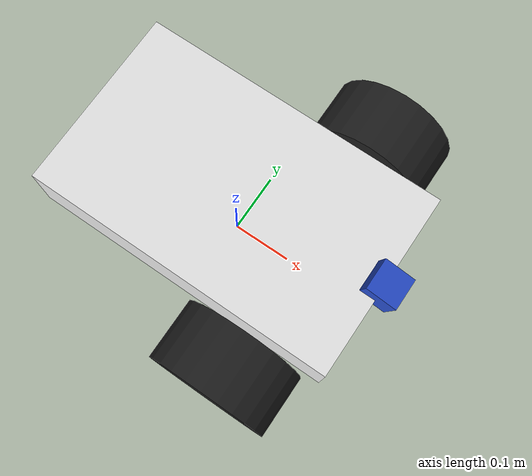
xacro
<?xml version="1.0"?>

<robot name="simpleton" xmlns:xacro="http://www.ros.org/wiki/xacro">

	<xacro:include filename="$(find simpleton_description)/urdf/simpleton.gazebo" />
	<xacro:include filename="$(find simpleton_description)/urdf/macros.xacro" />

	<xacro:property name="wheelThickness" value="0.1"/>
	<xacro:property name="wheelRadius" value="0.1"/>

	<xacro:property name="chassisWidth" value="0.3"/>
	<xacro:property name="chassisHeight" value="0.1"/>
	<xacro:property name="chassisLength" value="0.5"/>
	<xacro:property name="casterRadius" value="0.05"/>
	<xacro:property name="cameraSize" value="0.05"/>

	<!-- Base link -->
	<link name="footprint" />

	<!-- Chassis -->
  <joint name="base_joint" type="fixed">
    <parent link="footprint"/>
    <child link="chassis"/>
  </joint>

  <link name="chassis">
    <collision>
      <origin xyz="0 0 ${wheelRadius+(chassisHeight/2)}" rpy="0 0 0"/>
      <geometry>
			<box size="${chassisLength} ${chassisWidth} ${chassisHeight}"/>
      </geometry>
    </collision>

    <visual>
      <origin xyz="0 0 ${wheelRadius+(chassisHeight/2)}" rpy="0 0 0"/>
      <geometry>
			<box size="${chassisLength} ${chassisWidth} ${chassisHeight}"/>
      </geometry>
      <material name="white"/>
    </visual>

		<inertial>
		  <mass value="1"/>
			<origin xyz="0 0 0" rpy="0 0 0"/>
		  <box_inertia m="0.5" x="${chassisLength}" y="${chassisWidth}" z="${chassisHeight}"/>
		</inertial>
  </link>

	<wheel lr="left" y="-1"/>
	<wheel lr="right" y="1"/>

	<!-- Caster Wheel -->
  <joint name="fixed" type="fixed">
    <parent link="chassis"/>
    <child link="caster_wheel"/>
  </joint>

  <link name="caster_wheel">

    <collision>
      <origin xyz="${casterRadius-chassisLength/2} 0 ${casterRadius-chassisHeight+wheelRadius}" rpy="0 0 0"/>
      <geometry>
	<sphere radius="${casterRadius}"/>
      </geometry>
    </collision>

    <visual>
      <origin xyz="${casterRadius-chassisLength/2} 0 ${casterRadius-chassisHeight+wheelRadius}" rpy="0 0 0"/>
      <geometry>
	<sphere radius="${casterRadius}"/>
      </geometry>
      <material name="red"/>
    </visual>

    <inertial>
      <origin xyz="${casterRadius-chassisLength/2} 0 ${casterRadius-chassisHeight+wheelRadius}" rpy="0 0 0"/>
      <mass value="0.5"/>
      <sphere_inertia m="0.5" r="${casterRadius}"/>
    </inertial>
  </link>

	<!-- Camera -->
	<!-- You can adjust the camera angle with the p in rpy, measured in radians. -->
	<!-- You can also increate the height of the camera by adding a number, in meters, -->
	<!-- to the z in xyz. For example, to simulate a camera mounted on a 1/2 meter post, -->
	<!-- we can replace the z value with ${wheelRadius+chassisHeight+0.5}   							-->
  <joint name="camera_joint" type="fixed">
    <origin xyz="${chassisLength/2} 0 ${wheelRadius+chassisHeight}" rpy="0 .2 0"/>
    <parent link="chassis"/>
    <child link="camera"/>
  </joint>

  <link name="camera">
    <collision>
      <origin xyz="0 0 0" rpy="0 0 0"/>
      <geometry>
	<box size="${cameraSize} ${cameraSize} ${cameraSize}"/>
      </geometry>
    </collision>

    <visual>
      <origin xyz="0 0 0" rpy="0 0 0"/>
      <geometry>
	<box size="${cameraSize} ${cameraSize} ${cameraSize}"/>
      </geometry>
      <material name="blue"/>
    </visual>

    <inertial>
      <mass value="0.05" />
      <origin xyz="0 0 0" rpy="0 0 0"/>
      <box_inertia m="0.05" x="${cameraSize}" y="${cameraSize}" z="${cameraSize}" />
    </inertial>
  </link>

</robot>

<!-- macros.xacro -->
<robot>

	<!-- Wheel - Start -->
	<macro name="wheel" params="lr y">
		<link name="${lr}_wheel">
		  <collision>
		    <origin xyz="0 0 0" rpy="0 1.5708 1.5708" />
		    <geometry>
		     <cylinder length="${wheelThickness}" radius="${wheelRadius}"/>
		    </geometry>
			</collision>

			<visual>
			  <origin xyz="0 0 0" rpy="0 1.5708 1.5708" />
			  <geometry>
			   <cylinder length="${wheelThickness}" radius="${wheelRadius}"/>
			  </geometry>
			  <material name="black"/>
			</visual>

			<inertial>
			  <origin xyz="0 0 0" rpy="0 1.5708 1.5708" />
			  <mass value="0.2"/>
			  <cylinder_inertia m="0.2" r="${wheelRadius}" h="${wheelThickness}"/>
				<inertia ixx="0.4" ixy="0.1" ixz="0.1" iyy="0.4" iyz="0.1" izz="0.2"/>
			</inertial>
	 	</link>

	 	<joint name="${lr}_wheel_hinge" type="continuous">
		  <parent link="chassis"/>
		  <child link="${lr}_wheel"/>
		  <origin xyz="${chassisLength/4} ${y*(((wheelThickness+chassisWidth)/2)+.01)} ${wheelRadius}" rpy="0 0 0" />
		  <axis xyz="0 1 0" rpy="0 0 0" />
		  <dynamics damping="0.0" />
		</joint>

		<gazebo reference="${lr}_wheel">
			<mu1 value="1.0"/>
			<mu2 value="1.0"/>
			<kp  value="10000000.0" />
			<kd  value="1.0" />
			<fdir1 value="0 1 0"/>
			<material>Gazebo/Blue</material>
		</gazebo>

		<gazebo reference="${lr}_wheel_hinge">
			<implicitSpringDamper value='true' />
		</gazebo>

		<transmission name="${lr}_trans">
		  <type>transmission_interface/SimpleTransmission</type>
		  <joint name="${lr}_wheel_hinge">
		      <hardwareInterface>EffortJointInterface</hardwareInterface>
		  </joint>
		  <actuator name="${lr}Motor">
		  <hardwareInterface>hardwareInterface/EffortJointInterface</hardwareInterface>
		  <mechanicalReduction>10</mechanicalReduction>
		  </actuator>
		</transmission>
	</macro>
	<!-- Wheel - End -->

	<macro name="cylinder_inertia" params="m r h">
		<inertia  ixx="${m*(3*r*r+h*h)/12}" ixy = "0" ixz = "0"
		          iyy="${m*(3*r*r+h*h)/12}" iyz = "0"
		          izz="${m*r*r/2}" />
	</macro>

	<macro name="box_inertia" params="m x y z">
		<inertia  ixx="${m*(y*y+z*z)/12}" ixy = "0" ixz = "0"
		          iyy="${m*(x*x+z*z)/12}" iyz = "0"
		          izz="${m*(x*x+z*z)/12}" />
	</macro>

	<macro name="sphere_inertia" params="m r">
		<inertia  ixx="${2*m*r*r/5}" ixy = "0" ixz = "0"
		          iyy="${2*m*r*r/5}" iyz = "0"
		          izz="${2*m*r*r/5}" />
	</macro>

</robot>
